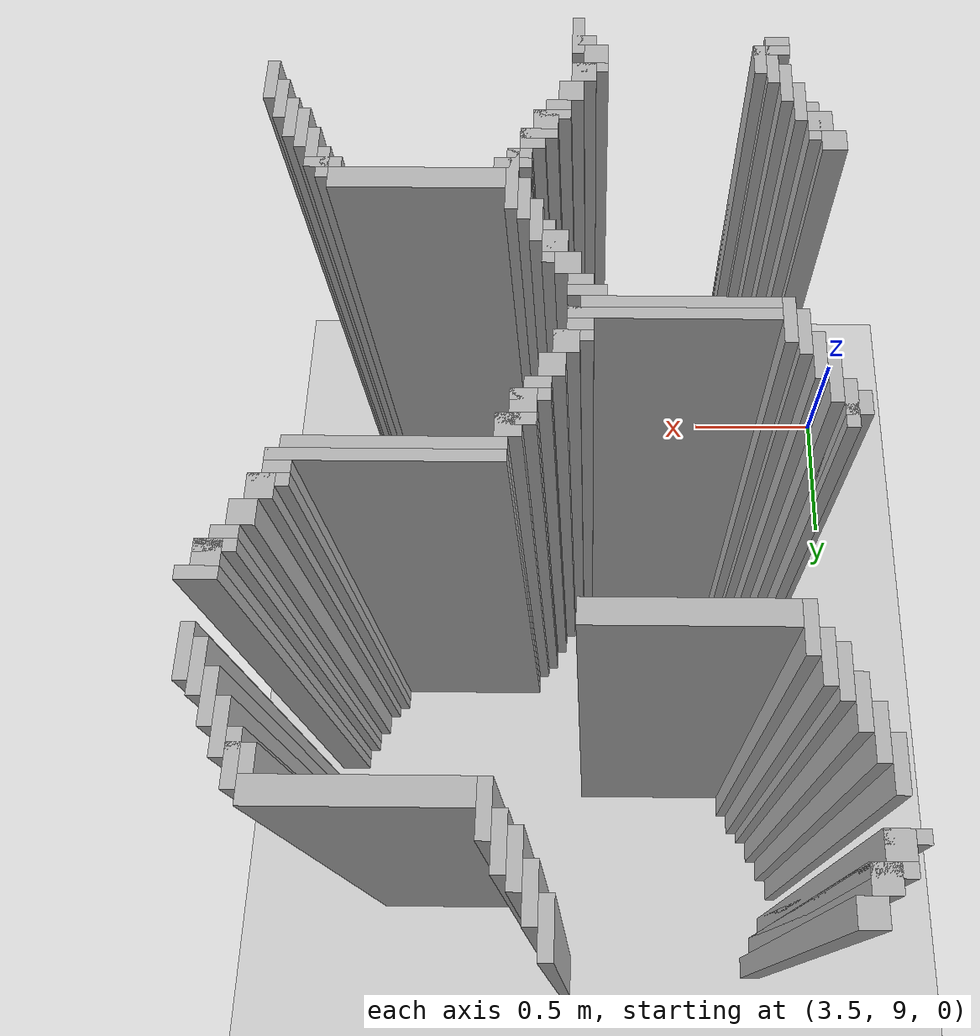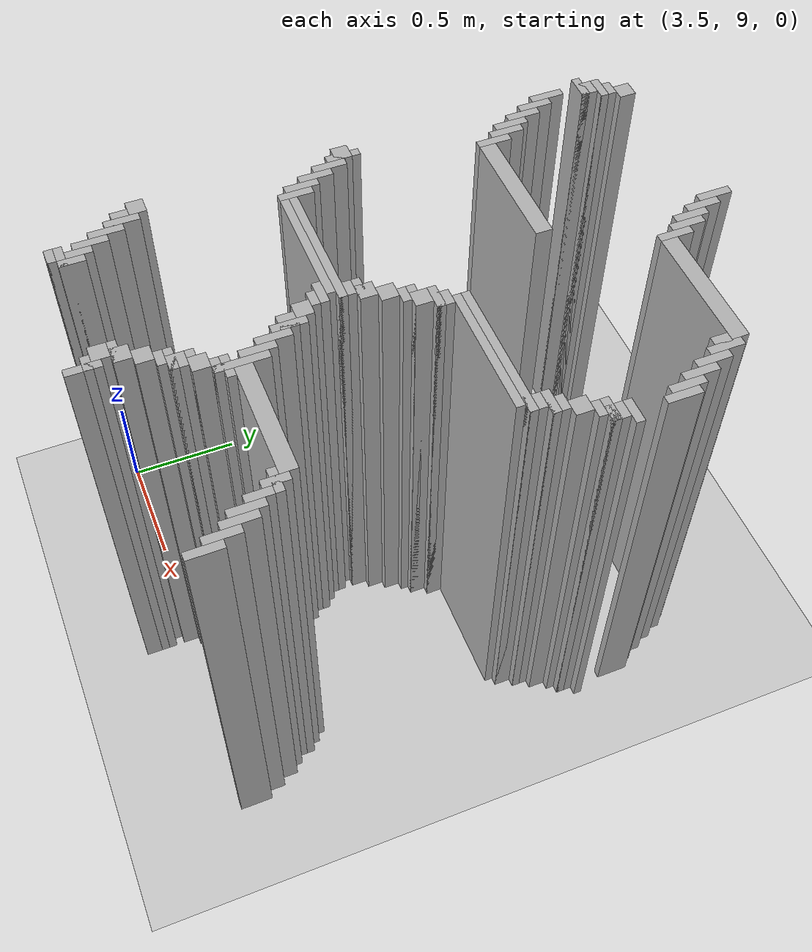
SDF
<sdf version="1.6">
 <world name="slam_world">
  <model name="ground_plane">
   <static>true</static>
   <link name="link">
    <collision name="collision">
     <geometry><plane><normal>0 0 1</normal><size>100 100</size></plane></geometry>
    </collision>
    <visual name="visual">
     <geometry><plane><normal>0 0 1</normal><size>100 100</size></plane></geometry>
     <material>
      <ambient>0.8 0.8 0.8 1</ambient>
      <diffuse>0.8 0.8 0.8 1</diffuse>
      <specular>0.8 0.8 0.8 1</specular>
     </material>
    </visual>
   </link>
  </model>
  <model name="wall_2072">
   <static>true</static>
   <pose>4.541763341067285 11.310904872389791 1.0 0 0 0</pose>
   <link name="link">
    <collision name="collision">
     <geometry><box><size>0.03480278422273782 0.13921113689095127 2.0</size></box></geometry>
    </collision>
    <visual name="visual">
     <geometry><box><size>0.03480278422273782 0.13921113689095127 2.0</size></box></geometry>
     <material><ambient>0.5 0.5 0.5 1</ambient><diffuse>0.7 0.7 0.7 1</diffuse></material>
    </visual>
   </link>
  </model>
  <model name="wall_2096">
   <static>true</static>
   <pose>3.863109048723898 11.276102088167052 1.0 0 0 0</pose>
   <link name="link">
    <collision name="collision">
     <geometry><box><size>0.06960556844547564 0.06960556844547564 2.0</size></box></geometry>
    </collision>
    <visual name="visual">
     <geometry><box><size>0.06960556844547564 0.06960556844547564 2.0</size></box></geometry>
     <material><ambient>0.5 0.5 0.5 1</ambient><diffuse>0.7 0.7 0.7 1</diffuse></material>
    </visual>
   </link>
  </model>
  <model name="wall_2097">
   <static>true</static>
   <pose>4.576566125290023 11.241299303944315 1.0 0 0 0</pose>
   <link name="link">
    <collision name="collision">
     <geometry><box><size>0.03480278422273782 0.13921113689095127 2.0</size></box></geometry>
    </collision>
    <visual name="visual">
     <geometry><box><size>0.03480278422273782 0.13921113689095127 2.0</size></box></geometry>
     <material><ambient>0.5 0.5 0.5 1</ambient><diffuse>0.7 0.7 0.7 1</diffuse></material>
    </visual>
   </link>
  </model>
  <model name="wall_2113">
   <static>true</static>
   <pose>3.82830626450116 11.206496519721577 1.0 0 0 0</pose>
   <link name="link">
    <collision name="collision">
     <geometry><box><size>0.06960556844547564 0.06960556844547564 2.0</size></box></geometry>
    </collision>
    <visual name="visual">
     <geometry><box><size>0.06960556844547564 0.06960556844547564 2.0</size></box></geometry>
     <material><ambient>0.5 0.5 0.5 1</ambient><diffuse>0.7 0.7 0.7 1</diffuse></material>
    </visual>
   </link>
  </model>
  <model name="wall_2114">
   <static>true</static>
   <pose>4.611368909512761 11.17169373549884 1.0 0 0 0</pose>
   <link name="link">
    <collision name="collision">
     <geometry><box><size>0.03480278422273782 0.13921113689095127 2.0</size></box></geometry>
    </collision>
    <visual name="visual">
     <geometry><box><size>0.03480278422273782 0.13921113689095127 2.0</size></box></geometry>
     <material><ambient>0.5 0.5 0.5 1</ambient><diffuse>0.7 0.7 0.7 1</diffuse></material>
    </visual>
   </link>
  </model>
  <model name="wall_2130">
   <static>true</static>
   <pose>3.810904872389791 11.189095127610209 1.0 0 0 0</pose>
   <link name="link">
    <collision name="collision">
     <geometry><box><size>0.10440835266821345 0.03480278422273782 2.0</size></box></geometry>
    </collision>
    <visual name="visual">
     <geometry><box><size>0.10440835266821345 0.03480278422273782 2.0</size></box></geometry>
     <material><ambient>0.5 0.5 0.5 1</ambient><diffuse>0.7 0.7 0.7 1</diffuse></material>
    </visual>
   </link>
  </model>
  <model name="wall_2131">
   <static>true</static>
   <pose>4.646171693735498 11.1368909512761 1.0 0 0 0</pose>
   <link name="link">
    <collision name="collision">
     <geometry><box><size>0.03480278422273782 0.13921113689095127 2.0</size></box></geometry>
    </collision>
    <visual name="visual">
     <geometry><box><size>0.03480278422273782 0.13921113689095127 2.0</size></box></geometry>
     <material><ambient>0.5 0.5 0.5 1</ambient><diffuse>0.7 0.7 0.7 1</diffuse></material>
    </visual>
   </link>
  </model>
  <model name="wall_2144">
   <static>true</static>
   <pose>3.793503480278422 11.1368909512761 1.0 0 0 0</pose>
   <link name="link">
    <collision name="collision">
     <geometry><box><size>0.06960556844547564 0.06960556844547564 2.0</size></box></geometry>
    </collision>
    <visual name="visual">
     <geometry><box><size>0.06960556844547564 0.06960556844547564 2.0</size></box></geometry>
     <material><ambient>0.5 0.5 0.5 1</ambient><diffuse>0.7 0.7 0.7 1</diffuse></material>
    </visual>
   </link>
  </model>
  <model name="wall_2154">
   <static>true</static>
   <pose>3.776102088167053 11.119489559164732 1.0 0 0 0</pose>
   <link name="link">
    <collision name="collision">
     <geometry><box><size>0.10440835266821345 0.03480278422273782 2.0</size></box></geometry>
    </collision>
    <visual name="visual">
     <geometry><box><size>0.10440835266821345 0.03480278422273782 2.0</size></box></geometry>
     <material><ambient>0.5 0.5 0.5 1</ambient><diffuse>0.7 0.7 0.7 1</diffuse></material>
    </visual>
   </link>
  </model>
  <model name="wall_2155">
   <static>true</static>
   <pose>4.6809744779582365 11.067285382830626 1.0 0 0 0</pose>
   <link name="link">
    <collision name="collision">
     <geometry><box><size>0.03480278422273782 0.13921113689095127 2.0</size></box></geometry>
    </collision>
    <visual name="visual">
     <geometry><box><size>0.03480278422273782 0.13921113689095127 2.0</size></box></geometry>
     <material><ambient>0.5 0.5 0.5 1</ambient><diffuse>0.7 0.7 0.7 1</diffuse></material>
    </visual>
   </link>
  </model>
  <model name="wall_2177">
   <static>true</static>
   <pose>4.959396751740139 11.032482598607888 1.0 0 0 0</pose>
   <link name="link">
    <collision name="collision">
     <geometry><box><size>0.5220417633410672 0.06960556844547564 2.0</size></box></geometry>
    </collision>
    <visual name="visual">
     <geometry><box><size>0.5220417633410672 0.06960556844547564 2.0</size></box></geometry>
     <material><ambient>0.5 0.5 0.5 1</ambient><diffuse>0.7 0.7 0.7 1</diffuse></material>
    </visual>
   </link>
  </model>
  <model name="wall_2188">
   <static>true</static>
   <pose>3.776102088167053 10.962877030162412 1.0 0 0 0</pose>
   <link name="link">
    <collision name="collision">
     <geometry><box><size>0.03480278422273782 0.13921113689095127 2.0</size></box></geometry>
    </collision>
    <visual name="visual">
     <geometry><box><size>0.03480278422273782 0.13921113689095127 2.0</size></box></geometry>
     <material><ambient>0.5 0.5 0.5 1</ambient><diffuse>0.7 0.7 0.7 1</diffuse></material>
    </visual>
   </link>
  </model>
  <model name="wall_2189">
   <static>true</static>
   <pose>5.237819025522041 10.962877030162412 1.0 0 0 0</pose>
   <link name="link">
    <collision name="collision">
     <geometry><box><size>0.03480278422273782 0.13921113689095127 2.0</size></box></geometry>
    </collision>
    <visual name="visual">
     <geometry><box><size>0.03480278422273782 0.13921113689095127 2.0</size></box></geometry>
     <material><ambient>0.5 0.5 0.5 1</ambient><diffuse>0.7 0.7 0.7 1</diffuse></material>
    </visual>
   </link>
  </model>
  <model name="wall_2201">
   <static>true</static>
   <pose>5.220417633410673 10.962877030162412 1.0 0 0 0</pose>
   <link name="link">
    <collision name="collision">
     <geometry><box><size>0.06960556844547564 0.06960556844547564 2.0</size></box></geometry>
    </collision>
    <visual name="visual">
     <geometry><box><size>0.06960556844547564 0.06960556844547564 2.0</size></box></geometry>
     <material><ambient>0.5 0.5 0.5 1</ambient><diffuse>0.7 0.7 0.7 1</diffuse></material>
    </visual>
   </link>
  </model>
  <model name="wall_2212">
   <static>true</static>
   <pose>3.810904872389791 10.893271461716937 1.0 0 0 0</pose>
   <link name="link">
    <collision name="collision">
     <geometry><box><size>0.03480278422273782 0.13921113689095127 2.0</size></box></geometry>
    </collision>
    <visual name="visual">
     <geometry><box><size>0.03480278422273782 0.13921113689095127 2.0</size></box></geometry>
     <material><ambient>0.5 0.5 0.5 1</ambient><diffuse>0.7 0.7 0.7 1</diffuse></material>
    </visual>
   </link>
  </model>
  <model name="wall_2213">
   <static>true</static>
   <pose>5.27262180974478 10.893271461716937 1.0 0 0 0</pose>
   <link name="link">
    <collision name="collision">
     <geometry><box><size>0.03480278422273782 0.13921113689095127 2.0</size></box></geometry>
    </collision>
    <visual name="visual">
     <geometry><box><size>0.03480278422273782 0.13921113689095127 2.0</size></box></geometry>
     <material><ambient>0.5 0.5 0.5 1</ambient><diffuse>0.7 0.7 0.7 1</diffuse></material>
    </visual>
   </link>
  </model>
  <model name="wall_2231">
   <static>true</static>
   <pose>3.845707656612529 10.82366589327146 1.0 0 0 0</pose>
   <link name="link">
    <collision name="collision">
     <geometry><box><size>0.03480278422273782 0.13921113689095127 2.0</size></box></geometry>
    </collision>
    <visual name="visual">
     <geometry><box><size>0.03480278422273782 0.13921113689095127 2.0</size></box></geometry>
     <material><ambient>0.5 0.5 0.5 1</ambient><diffuse>0.7 0.7 0.7 1</diffuse></material>
    </visual>
   </link>
  </model>
  <model name="wall_2232">
   <static>true</static>
   <pose>5.307424593967517 10.82366589327146 1.0 0 0 0</pose>
   <link name="link">
    <collision name="collision">
     <geometry><box><size>0.03480278422273782 0.13921113689095127 2.0</size></box></geometry>
    </collision>
    <visual name="visual">
     <geometry><box><size>0.03480278422273782 0.13921113689095127 2.0</size></box></geometry>
     <material><ambient>0.5 0.5 0.5 1</ambient><diffuse>0.7 0.7 0.7 1</diffuse></material>
    </visual>
   </link>
  </model>
  <model name="wall_2243">
   <static>true</static>
   <pose>3.8805104408352666 10.754060324825986 1.0 0 0 0</pose>
   <link name="link">
    <collision name="collision">
     <geometry><box><size>0.03480278422273782 0.13921113689095127 2.0</size></box></geometry>
    </collision>
    <visual name="visual">
     <geometry><box><size>0.03480278422273782 0.13921113689095127 2.0</size></box></geometry>
     <material><ambient>0.5 0.5 0.5 1</ambient><diffuse>0.7 0.7 0.7 1</diffuse></material>
    </visual>
   </link>
  </model>
  <model name="wall_2244">
   <static>true</static>
   <pose>5.342227378190255 10.754060324825986 1.0 0 0 0</pose>
   <link name="link">
    <collision name="collision">
     <geometry><box><size>0.03480278422273782 0.13921113689095127 2.0</size></box></geometry>
    </collision>
    <visual name="visual">
     <geometry><box><size>0.03480278422273782 0.13921113689095127 2.0</size></box></geometry>
     <material><ambient>0.5 0.5 0.5 1</ambient><diffuse>0.7 0.7 0.7 1</diffuse></material>
    </visual>
   </link>
  </model>
  <model name="wall_2255">
   <static>true</static>
   <pose>3.9153132250580045 10.719257540603248 1.0 0 0 0</pose>
   <link name="link">
    <collision name="collision">
     <geometry><box><size>0.03480278422273782 0.13921113689095127 2.0</size></box></geometry>
    </collision>
    <visual name="visual">
     <geometry><box><size>0.03480278422273782 0.13921113689095127 2.0</size></box></geometry>
     <material><ambient>0.5 0.5 0.5 1</ambient><diffuse>0.7 0.7 0.7 1</diffuse></material>
    </visual>
   </link>
  </model>
  <model name="wall_2256">
   <static>true</static>
   <pose>5.377030162412993 10.719257540603248 1.0 0 0 0</pose>
   <link name="link">
    <collision name="collision">
     <geometry><box><size>0.03480278422273782 0.13921113689095127 2.0</size></box></geometry>
    </collision>
    <visual name="visual">
     <geometry><box><size>0.03480278422273782 0.13921113689095127 2.0</size></box></geometry>
     <material><ambient>0.5 0.5 0.5 1</ambient><diffuse>0.7 0.7 0.7 1</diffuse></material>
    </visual>
   </link>
  </model>
  <model name="wall_2273">
   <static>true</static>
   <pose>3.9501160092807424 10.649651972157772 1.0 0 0 0</pose>
   <link name="link">
    <collision name="collision">
     <geometry><box><size>0.03480278422273782 0.13921113689095127 2.0</size></box></geometry>
    </collision>
    <visual name="visual">
     <geometry><box><size>0.03480278422273782 0.13921113689095127 2.0</size></box></geometry>
     <material><ambient>0.5 0.5 0.5 1</ambient><diffuse>0.7 0.7 0.7 1</diffuse></material>
    </visual>
   </link>
  </model>
  <model name="wall_2292">
   <static>true</static>
   <pose>4.228538283062645 10.614849187935034 1.0 0 0 0</pose>
   <link name="link">
    <collision name="collision">
     <geometry><box><size>0.5220417633410672 0.06960556844547564 2.0</size></box></geometry>
    </collision>
    <visual name="visual">
     <geometry><box><size>0.5220417633410672 0.06960556844547564 2.0</size></box></geometry>
     <material><ambient>0.5 0.5 0.5 1</ambient><diffuse>0.7 0.7 0.7 1</diffuse></material>
    </visual>
   </link>
  </model>
  <model name="wall_2315">
   <static>true</static>
   <pose>5.377030162412993 10.52784222737819 1.0 0 0 0</pose>
   <link name="link">
    <collision name="collision">
     <geometry><box><size>0.10440835266821345 0.03480278422273782 2.0</size></box></geometry>
    </collision>
    <visual name="visual">
     <geometry><box><size>0.10440835266821345 0.03480278422273782 2.0</size></box></geometry>
     <material><ambient>0.5 0.5 0.5 1</ambient><diffuse>0.7 0.7 0.7 1</diffuse></material>
    </visual>
   </link>
  </model>
  <model name="wall_2326">
   <static>true</static>
   <pose>5.359628770301624 10.475638051044083 1.0 0 0 0</pose>
   <link name="link">
    <collision name="collision">
     <geometry><box><size>0.06960556844547564 0.06960556844547564 2.0</size></box></geometry>
    </collision>
    <visual name="visual">
     <geometry><box><size>0.06960556844547564 0.06960556844547564 2.0</size></box></geometry>
     <material><ambient>0.5 0.5 0.5 1</ambient><diffuse>0.7 0.7 0.7 1</diffuse></material>
    </visual>
   </link>
  </model>
  <model name="wall_2337">
   <static>true</static>
   <pose>5.342227378190255 10.458236658932714 1.0 0 0 0</pose>
   <link name="link">
    <collision name="collision">
     <geometry><box><size>0.10440835266821345 0.03480278422273782 2.0</size></box></geometry>
    </collision>
    <visual name="visual">
     <geometry><box><size>0.10440835266821345 0.03480278422273782 2.0</size></box></geometry>
     <material><ambient>0.5 0.5 0.5 1</ambient><diffuse>0.7 0.7 0.7 1</diffuse></material>
    </visual>
   </link>
  </model>
  <model name="wall_2345">
   <static>true</static>
   <pose>5.324825986078886 10.423433874709977 1.0 0 0 0</pose>
   <link name="link">
    <collision name="collision">
     <geometry><box><size>0.06960556844547564 0.03480278422273782 2.0</size></box></geometry>
    </collision>
    <visual name="visual">
     <geometry><box><size>0.06960556844547564 0.03480278422273782 2.0</size></box></geometry>
     <material><ambient>0.5 0.5 0.5 1</ambient><diffuse>0.7 0.7 0.7 1</diffuse></material>
    </visual>
   </link>
  </model>
  <model name="wall_2353">
   <static>true</static>
   <pose>5.290023201856148 10.37122969837587 1.0 0 0 0</pose>
   <link name="link">
    <collision name="collision">
     <geometry><box><size>0.06960556844547564 0.06960556844547564 2.0</size></box></geometry>
    </collision>
    <visual name="visual">
     <geometry><box><size>0.06960556844547564 0.06960556844547564 2.0</size></box></geometry>
     <material><ambient>0.5 0.5 0.5 1</ambient><diffuse>0.7 0.7 0.7 1</diffuse></material>
    </visual>
   </link>
  </model>
  <model name="wall_2364">
   <static>true</static>
   <pose>5.25522041763341 10.301624129930394 1.0 0 0 0</pose>
   <link name="link">
    <collision name="collision">
     <geometry><box><size>0.06960556844547564 0.06960556844547564 2.0</size></box></geometry>
    </collision>
    <visual name="visual">
     <geometry><box><size>0.06960556844547564 0.06960556844547564 2.0</size></box></geometry>
     <material><ambient>0.5 0.5 0.5 1</ambient><diffuse>0.7 0.7 0.7 1</diffuse></material>
    </visual>
   </link>
  </model>
  <model name="wall_2375">
   <static>true</static>
   <pose>5.237819025522041 10.284222737819025 1.0 0 0 0</pose>
   <link name="link">
    <collision name="collision">
     <geometry><box><size>0.10440835266821345 0.03480278422273782 2.0</size></box></geometry>
    </collision>
    <visual name="visual">
     <geometry><box><size>0.10440835266821345 0.03480278422273782 2.0</size></box></geometry>
     <material><ambient>0.5 0.5 0.5 1</ambient><diffuse>0.7 0.7 0.7 1</diffuse></material>
    </visual>
   </link>
  </model>
  <model name="wall_2383">
   <static>true</static>
   <pose>5.220417633410673 10.232018561484919 1.0 0 0 0</pose>
   <link name="link">
    <collision name="collision">
     <geometry><box><size>0.06960556844547564 0.06960556844547564 2.0</size></box></geometry>
    </collision>
    <visual name="visual">
     <geometry><box><size>0.06960556844547564 0.06960556844547564 2.0</size></box></geometry>
     <material><ambient>0.5 0.5 0.5 1</ambient><diffuse>0.7 0.7 0.7 1</diffuse></material>
    </visual>
   </link>
  </model>
  <model name="wall_2391">
   <static>true</static>
   <pose>4.959396751740139 10.214617169373549 1.0 0 0 0</pose>
   <link name="link">
    <collision name="collision">
     <geometry><box><size>0.5916473317865429 0.03480278422273782 2.0</size></box></geometry>
    </collision>
    <visual name="visual">
     <geometry><box><size>0.5916473317865429 0.03480278422273782 2.0</size></box></geometry>
     <material><ambient>0.5 0.5 0.5 1</ambient><diffuse>0.7 0.7 0.7 1</diffuse></material>
    </visual>
   </link>
  </model>
  <model name="wall_2400">
   <static>true</static>
   <pose>4.94199535962877 10.179814385150811 1.0 0 0 0</pose>
   <link name="link">
    <collision name="collision">
     <geometry><box><size>0.5568445475638051 0.03480278422273782 2.0</size></box></geometry>
    </collision>
    <visual name="visual">
     <geometry><box><size>0.5568445475638051 0.03480278422273782 2.0</size></box></geometry>
     <material><ambient>0.5 0.5 0.5 1</ambient><diffuse>0.7 0.7 0.7 1</diffuse></material>
    </visual>
   </link>
  </model>
  <model name="wall_2410">
   <static>true</static>
   <pose>4.663573085846868 10.127610208816705 1.0 0 0 0</pose>
   <link name="link">
    <collision name="collision">
     <geometry><box><size>0.06960556844547564 0.06960556844547564 2.0</size></box></geometry>
    </collision>
    <visual name="visual">
     <geometry><box><size>0.06960556844547564 0.06960556844547564 2.0</size></box></geometry>
     <material><ambient>0.5 0.5 0.5 1</ambient><diffuse>0.7 0.7 0.7 1</diffuse></material>
    </visual>
   </link>
  </model>
  <model name="wall_2423">
   <static>true</static>
   <pose>3.810904872389791 10.058004640371228 1.0 0 0 0</pose>
   <link name="link">
    <collision name="collision">
     <geometry><box><size>0.03480278422273782 0.13921113689095127 2.0</size></box></geometry>
    </collision>
    <visual name="visual">
     <geometry><box><size>0.03480278422273782 0.13921113689095127 2.0</size></box></geometry>
     <material><ambient>0.5 0.5 0.5 1</ambient><diffuse>0.7 0.7 0.7 1</diffuse></material>
    </visual>
   </link>
  </model>
  <model name="wall_2424">
   <static>true</static>
   <pose>4.646171693735498 10.110208816705336 1.0 0 0 0</pose>
   <link name="link">
    <collision name="collision">
     <geometry><box><size>0.10440835266821345 0.03480278422273782 2.0</size></box></geometry>
    </collision>
    <visual name="visual">
     <geometry><box><size>0.10440835266821345 0.03480278422273782 2.0</size></box></geometry>
     <material><ambient>0.5 0.5 0.5 1</ambient><diffuse>0.7 0.7 0.7 1</diffuse></material>
    </visual>
   </link>
  </model>
  <model name="wall_2437">
   <static>true</static>
   <pose>3.793503480278422 10.058004640371228 1.0 0 0 0</pose>
   <link name="link">
    <collision name="collision">
     <geometry><box><size>0.06960556844547564 0.06960556844547564 2.0</size></box></geometry>
    </collision>
    <visual name="visual">
     <geometry><box><size>0.06960556844547564 0.06960556844547564 2.0</size></box></geometry>
     <material><ambient>0.5 0.5 0.5 1</ambient><diffuse>0.7 0.7 0.7 1</diffuse></material>
    </visual>
   </link>
  </model>
  <model name="wall_2438">
   <static>true</static>
   <pose>4.6287703016241295 10.058004640371228 1.0 0 0 0</pose>
   <link name="link">
    <collision name="collision">
     <geometry><box><size>0.06960556844547564 0.06960556844547564 2.0</size></box></geometry>
    </collision>
    <visual name="visual">
     <geometry><box><size>0.06960556844547564 0.06960556844547564 2.0</size></box></geometry>
     <material><ambient>0.5 0.5 0.5 1</ambient><diffuse>0.7 0.7 0.7 1</diffuse></material>
    </visual>
   </link>
  </model>
  <model name="wall_2451">
   <static>true</static>
   <pose>3.845707656612529 9.988399071925754 1.0 0 0 0</pose>
   <link name="link">
    <collision name="collision">
     <geometry><box><size>0.03480278422273782 0.13921113689095127 2.0</size></box></geometry>
    </collision>
    <visual name="visual">
     <geometry><box><size>0.03480278422273782 0.13921113689095127 2.0</size></box></geometry>
     <material><ambient>0.5 0.5 0.5 1</ambient><diffuse>0.7 0.7 0.7 1</diffuse></material>
    </visual>
   </link>
  </model>
  <model name="wall_2452">
   <static>true</static>
   <pose>4.611368909512761 10.04060324825986 1.0 0 0 0</pose>
   <link name="link">
    <collision name="collision">
     <geometry><box><size>0.10440835266821345 0.03480278422273782 2.0</size></box></geometry>
    </collision>
    <visual name="visual">
     <geometry><box><size>0.10440835266821345 0.03480278422273782 2.0</size></box></geometry>
     <material><ambient>0.5 0.5 0.5 1</ambient><diffuse>0.7 0.7 0.7 1</diffuse></material>
    </visual>
   </link>
  </model>
  <model name="wall_2464">
   <static>true</static>
   <pose>4.593967517401392 10.005800464037122 1.0 0 0 0</pose>
   <link name="link">
    <collision name="collision">
     <geometry><box><size>0.06960556844547564 0.03480278422273782 2.0</size></box></geometry>
    </collision>
    <visual name="visual">
     <geometry><box><size>0.06960556844547564 0.03480278422273782 2.0</size></box></geometry>
     <material><ambient>0.5 0.5 0.5 1</ambient><diffuse>0.7 0.7 0.7 1</diffuse></material>
    </visual>
   </link>
  </model>
  <model name="wall_2473">
   <static>true</static>
   <pose>3.8805104408352666 9.918793503480279 1.0 0 0 0</pose>
   <link name="link">
    <collision name="collision">
     <geometry><box><size>0.03480278422273782 0.13921113689095127 2.0</size></box></geometry>
    </collision>
    <visual name="visual">
     <geometry><box><size>0.03480278422273782 0.13921113689095127 2.0</size></box></geometry>
     <material><ambient>0.5 0.5 0.5 1</ambient><diffuse>0.7 0.7 0.7 1</diffuse></material>
    </visual>
   </link>
  </model>
  <model name="wall_2474">
   <static>true</static>
   <pose>4.559164733178654 9.953596287703016 1.0 0 0 0</pose>
   <link name="link">
    <collision name="collision">
     <geometry><box><size>0.06960556844547564 0.06960556844547564 2.0</size></box></geometry>
    </collision>
    <visual name="visual">
     <geometry><box><size>0.06960556844547564 0.06960556844547564 2.0</size></box></geometry>
     <material><ambient>0.5 0.5 0.5 1</ambient><diffuse>0.7 0.7 0.7 1</diffuse></material>
    </visual>
   </link>
  </model>
  <model name="wall_2487">
   <static>true</static>
   <pose>3.9153132250580045 9.849187935034802 1.0 0 0 0</pose>
   <link name="link">
    <collision name="collision">
     <geometry><box><size>0.03480278422273782 0.13921113689095127 2.0</size></box></geometry>
    </collision>
    <visual name="visual">
     <geometry><box><size>0.03480278422273782 0.13921113689095127 2.0</size></box></geometry>
     <material><ambient>0.5 0.5 0.5 1</ambient><diffuse>0.7 0.7 0.7 1</diffuse></material>
    </visual>
   </link>
  </model>
  <model name="wall_2488">
   <static>true</static>
   <pose>4.524361948955916 9.88399071925754 1.0 0 0 0</pose>
   <link name="link">
    <collision name="collision">
     <geometry><box><size>0.06960556844547564 0.06960556844547564 2.0</size></box></geometry>
    </collision>
    <visual name="visual">
     <geometry><box><size>0.06960556844547564 0.06960556844547564 2.0</size></box></geometry>
     <material><ambient>0.5 0.5 0.5 1</ambient><diffuse>0.7 0.7 0.7 1</diffuse></material>
    </visual>
   </link>
  </model>
  <model name="wall_2501">
   <static>true</static>
   <pose>3.9501160092807424 9.814385150812065 1.0 0 0 0</pose>
   <link name="link">
    <collision name="collision">
     <geometry><box><size>0.03480278422273782 0.13921113689095127 2.0</size></box></geometry>
    </collision>
    <visual name="visual">
     <geometry><box><size>0.03480278422273782 0.13921113689095127 2.0</size></box></geometry>
     <material><ambient>0.5 0.5 0.5 1</ambient><diffuse>0.7 0.7 0.7 1</diffuse></material>
    </visual>
   </link>
  </model>
  <model name="wall_2502">
   <static>true</static>
   <pose>4.506960556844548 9.86658932714617 1.0 0 0 0</pose>
   <link name="link">
    <collision name="collision">
     <geometry><box><size>0.10440835266821345 0.03480278422273782 2.0</size></box></geometry>
    </collision>
    <visual name="visual">
     <geometry><box><size>0.10440835266821345 0.03480278422273782 2.0</size></box></geometry>
     <material><ambient>0.5 0.5 0.5 1</ambient><diffuse>0.7 0.7 0.7 1</diffuse></material>
    </visual>
   </link>
  </model>
  <model name="wall_2514">
   <static>true</static>
   <pose>4.489559164733178 9.814385150812065 1.0 0 0 0</pose>
   <link name="link">
    <collision name="collision">
     <geometry><box><size>0.06960556844547564 0.06960556844547564 2.0</size></box></geometry>
    </collision>
    <visual name="visual">
     <geometry><box><size>0.06960556844547564 0.06960556844547564 2.0</size></box></geometry>
     <material><ambient>0.5 0.5 0.5 1</ambient><diffuse>0.7 0.7 0.7 1</diffuse></material>
    </visual>
   </link>
  </model>
  <model name="wall_2523">
   <static>true</static>
   <pose>4.2459396751740135 9.796983758700696 1.0 0 0 0</pose>
   <link name="link">
    <collision name="collision">
     <geometry><box><size>0.5568445475638051 0.03480278422273782 2.0</size></box></geometry>
    </collision>
    <visual name="visual">
     <geometry><box><size>0.5568445475638051 0.03480278422273782 2.0</size></box></geometry>
     <material><ambient>0.5 0.5 0.5 1</ambient><diffuse>0.7 0.7 0.7 1</diffuse></material>
    </visual>
   </link>
  </model>
  <model name="wall_2536">
   <static>true</static>
   <pose>4.228538283062645 9.762180974477959 1.0 0 0 0</pose>
   <link name="link">
    <collision name="collision">
     <geometry><box><size>0.5220417633410672 0.03480278422273782 2.0</size></box></geometry>
    </collision>
    <visual name="visual">
     <geometry><box><size>0.5220417633410672 0.03480278422273782 2.0</size></box></geometry>
     <material><ambient>0.5 0.5 0.5 1</ambient><diffuse>0.7 0.7 0.7 1</diffuse></material>
    </visual>
   </link>
  </model>
  <model name="wall_2543">
   <static>true</static>
   <pose>4.472157772621809 9.72737819025522 1.0 0 0 0</pose>
   <link name="link">
    <collision name="collision">
     <geometry><box><size>0.10440835266821345 0.03480278422273782 2.0</size></box></geometry>
    </collision>
    <visual name="visual">
     <geometry><box><size>0.10440835266821345 0.03480278422273782 2.0</size></box></geometry>
     <material><ambient>0.5 0.5 0.5 1</ambient><diffuse>0.7 0.7 0.7 1</diffuse></material>
    </visual>
   </link>
  </model>
  <model name="wall_2552">
   <static>true</static>
   <pose>4.489559164733178 9.692575406032482 1.0 0 0 0</pose>
   <link name="link">
    <collision name="collision">
     <geometry><box><size>0.06960556844547564 0.03480278422273782 2.0</size></box></geometry>
    </collision>
    <visual name="visual">
     <geometry><box><size>0.06960556844547564 0.03480278422273782 2.0</size></box></geometry>
     <material><ambient>0.5 0.5 0.5 1</ambient><diffuse>0.7 0.7 0.7 1</diffuse></material>
    </visual>
   </link>
  </model>
  <model name="wall_2560">
   <static>true</static>
   <pose>4.524361948955916 9.640371229698376 1.0 0 0 0</pose>
   <link name="link">
    <collision name="collision">
     <geometry><box><size>0.06960556844547564 0.06960556844547564 2.0</size></box></geometry>
    </collision>
    <visual name="visual">
     <geometry><box><size>0.06960556844547564 0.06960556844547564 2.0</size></box></geometry>
     <material><ambient>0.5 0.5 0.5 1</ambient><diffuse>0.7 0.7 0.7 1</diffuse></material>
    </visual>
   </link>
  </model>
  <model name="wall_2571">
   <static>true</static>
   <pose>4.576566125290023 9.5707656612529 1.0 0 0 0</pose>
   <link name="link">
    <collision name="collision">
     <geometry><box><size>0.03480278422273782 0.13921113689095127 2.0</size></box></geometry>
    </collision>
    <visual name="visual">
     <geometry><box><size>0.03480278422273782 0.13921113689095127 2.0</size></box></geometry>
     <material><ambient>0.5 0.5 0.5 1</ambient><diffuse>0.7 0.7 0.7 1</diffuse></material>
    </visual>
   </link>
  </model>
  <model name="wall_2582">
   <static>true</static>
   <pose>4.559164733178654 9.5707656612529 1.0 0 0 0</pose>
   <link name="link">
    <collision name="collision">
     <geometry><box><size>0.06960556844547564 0.06960556844547564 2.0</size></box></geometry>
    </collision>
    <visual name="visual">
     <geometry><box><size>0.06960556844547564 0.06960556844547564 2.0</size></box></geometry>
     <material><ambient>0.5 0.5 0.5 1</ambient><diffuse>0.7 0.7 0.7 1</diffuse></material>
    </visual>
   </link>
  </model>
  <model name="wall_2593">
   <static>true</static>
   <pose>4.611368909512761 9.501160092807424 1.0 0 0 0</pose>
   <link name="link">
    <collision name="collision">
     <geometry><box><size>0.03480278422273782 0.13921113689095127 2.0</size></box></geometry>
    </collision>
    <visual name="visual">
     <geometry><box><size>0.03480278422273782 0.13921113689095127 2.0</size></box></geometry>
     <material><ambient>0.5 0.5 0.5 1</ambient><diffuse>0.7 0.7 0.7 1</diffuse></material>
    </visual>
   </link>
  </model>
  <model name="wall_2608">
   <static>true</static>
   <pose>4.646171693735498 9.431554524361948 1.0 0 0 0</pose>
   <link name="link">
    <collision name="collision">
     <geometry><box><size>0.03480278422273782 0.13921113689095127 2.0</size></box></geometry>
    </collision>
    <visual name="visual">
     <geometry><box><size>0.03480278422273782 0.13921113689095127 2.0</size></box></geometry>
     <material><ambient>0.5 0.5 0.5 1</ambient><diffuse>0.7 0.7 0.7 1</diffuse></material>
    </visual>
   </link>
  </model>
  <model name="wall_2619">
   <static>true</static>
   <pose>4.6809744779582365 9.361948955916473 1.0 0 0 0</pose>
   <link name="link">
    <collision name="collision">
     <geometry><box><size>0.03480278422273782 0.2088167053364269 2.0</size></box></geometry>
    </collision>
    <visual name="visual">
     <geometry><box><size>0.03480278422273782 0.2088167053364269 2.0</size></box></geometry>
     <material><ambient>0.5 0.5 0.5 1</ambient><diffuse>0.7 0.7 0.7 1</diffuse></material>
    </visual>
   </link>
  </model>
  <model name="wall_2635">
   <static>true</static>
   <pose>4.94199535962877 9.361948955916473 1.0 0 0 0</pose>
   <link name="link">
    <collision name="collision">
     <geometry><box><size>0.4872389791183295 0.06960556844547564 2.0</size></box></geometry>
    </collision>
    <visual name="visual">
     <geometry><box><size>0.4872389791183295 0.06960556844547564 2.0</size></box></geometry>
     <material><ambient>0.5 0.5 0.5 1</ambient><diffuse>0.7 0.7 0.7 1</diffuse></material>
    </visual>
   </link>
  </model>
  <model name="wall_2646">
   <static>true</static>
   <pose>5.203016241299304 9.309744779582367 1.0 0 0 0</pose>
   <link name="link">
    <collision name="collision">
     <geometry><box><size>0.03480278422273782 0.10440835266821345 2.0</size></box></geometry>
    </collision>
    <visual name="visual">
     <geometry><box><size>0.03480278422273782 0.10440835266821345 2.0</size></box></geometry>
     <material><ambient>0.5 0.5 0.5 1</ambient><diffuse>0.7 0.7 0.7 1</diffuse></material>
    </visual>
   </link>
  </model>
  <model name="wall_2658">
   <static>true</static>
   <pose>4.6809744779582365 9.309744779582367 1.0 0 0 0</pose>
   <link name="link">
    <collision name="collision">
     <geometry><box><size>0.10440835266821345 0.03480278422273782 2.0</size></box></geometry>
    </collision>
    <visual name="visual">
     <geometry><box><size>0.10440835266821345 0.03480278422273782 2.0</size></box></geometry>
     <material><ambient>0.5 0.5 0.5 1</ambient><diffuse>0.7 0.7 0.7 1</diffuse></material>
    </visual>
   </link>
  </model>
  <model name="wall_2659">
   <static>true</static>
   <pose>5.203016241299304 9.309744779582367 1.0 0 0 0</pose>
   <link name="link">
    <collision name="collision">
     <geometry><box><size>0.10440835266821345 0.03480278422273782 2.0</size></box></geometry>
    </collision>
    <visual name="visual">
     <geometry><box><size>0.10440835266821345 0.03480278422273782 2.0</size></box></geometry>
     <material><ambient>0.5 0.5 0.5 1</ambient><diffuse>0.7 0.7 0.7 1</diffuse></material>
    </visual>
   </link>
  </model>
  <model name="wall_2677">
   <static>true</static>
   <pose>4.663573085846868 9.274941995359628 1.0 0 0 0</pose>
   <link name="link">
    <collision name="collision">
     <geometry><box><size>0.06960556844547564 0.03480278422273782 2.0</size></box></geometry>
    </collision>
    <visual name="visual">
     <geometry><box><size>0.06960556844547564 0.03480278422273782 2.0</size></box></geometry>
     <material><ambient>0.5 0.5 0.5 1</ambient><diffuse>0.7 0.7 0.7 1</diffuse></material>
    </visual>
   </link>
  </model>
  <model name="wall_2678">
   <static>true</static>
   <pose>5.237819025522041 9.24013921113689 1.0 0 0 0</pose>
   <link name="link">
    <collision name="collision">
     <geometry><box><size>0.03480278422273782 0.10440835266821345 2.0</size></box></geometry>
    </collision>
    <visual name="visual">
     <geometry><box><size>0.03480278422273782 0.10440835266821345 2.0</size></box></geometry>
     <material><ambient>0.5 0.5 0.5 1</ambient><diffuse>0.7 0.7 0.7 1</diffuse></material>
    </visual>
   </link>
  </model>
  <model name="wall_2694">
   <static>true</static>
   <pose>3.793503480278422 9.222737819025522 1.0 0 0 0</pose>
   <link name="link">
    <collision name="collision">
     <geometry><box><size>0.06960556844547564 0.06960556844547564 2.0</size></box></geometry>
    </collision>
    <visual name="visual">
     <geometry><box><size>0.06960556844547564 0.06960556844547564 2.0</size></box></geometry>
     <material><ambient>0.5 0.5 0.5 1</ambient><diffuse>0.7 0.7 0.7 1</diffuse></material>
    </visual>
   </link>
  </model>
  <model name="wall_2695">
   <static>true</static>
   <pose>4.6287703016241295 9.222737819025522 1.0 0 0 0</pose>
   <link name="link">
    <collision name="collision">
     <geometry><box><size>0.06960556844547564 0.06960556844547564 2.0</size></box></geometry>
    </collision>
    <visual name="visual">
     <geometry><box><size>0.06960556844547564 0.06960556844547564 2.0</size></box></geometry>
     <material><ambient>0.5 0.5 0.5 1</ambient><diffuse>0.7 0.7 0.7 1</diffuse></material>
    </visual>
   </link>
  </model>
  <model name="wall_2696">
   <static>true</static>
   <pose>5.27262180974478 9.187935034802784 1.0 0 0 0</pose>
   <link name="link">
    <collision name="collision">
     <geometry><box><size>0.03480278422273782 0.13921113689095127 2.0</size></box></geometry>
    </collision>
    <visual name="visual">
     <geometry><box><size>0.03480278422273782 0.13921113689095127 2.0</size></box></geometry>
     <material><ambient>0.5 0.5 0.5 1</ambient><diffuse>0.7 0.7 0.7 1</diffuse></material>
    </visual>
   </link>
  </model>
  <model name="wall_2713">
   <static>true</static>
   <pose>3.845707656612529 9.153132250580047 1.0 0 0 0</pose>
   <link name="link">
    <collision name="collision">
     <geometry><box><size>0.03480278422273782 0.13921113689095127 2.0</size></box></geometry>
    </collision>
    <visual name="visual">
     <geometry><box><size>0.03480278422273782 0.13921113689095127 2.0</size></box></geometry>
     <material><ambient>0.5 0.5 0.5 1</ambient><diffuse>0.7 0.7 0.7 1</diffuse></material>
    </visual>
   </link>
  </model>
  <model name="wall_2714">
   <static>true</static>
   <pose>4.611368909512761 9.205336426914153 1.0 0 0 0</pose>
   <link name="link">
    <collision name="collision">
     <geometry><box><size>0.10440835266821345 0.03480278422273782 2.0</size></box></geometry>
    </collision>
    <visual name="visual">
     <geometry><box><size>0.10440835266821345 0.03480278422273782 2.0</size></box></geometry>
     <material><ambient>0.5 0.5 0.5 1</ambient><diffuse>0.7 0.7 0.7 1</diffuse></material>
    </visual>
   </link>
  </model>
  <model name="wall_2715">
   <static>true</static>
   <pose>5.307424593967517 9.153132250580047 1.0 0 0 0</pose>
   <link name="link">
    <collision name="collision">
     <geometry><box><size>0.03480278422273782 0.13921113689095127 2.0</size></box></geometry>
    </collision>
    <visual name="visual">
     <geometry><box><size>0.03480278422273782 0.13921113689095127 2.0</size></box></geometry>
     <material><ambient>0.5 0.5 0.5 1</ambient><diffuse>0.7 0.7 0.7 1</diffuse></material>
    </visual>
   </link>
  </model>
  <model name="wall_2730">
   <static>true</static>
   <pose>3.82830626450116 9.153132250580047 1.0 0 0 0</pose>
   <link name="link">
    <collision name="collision">
     <geometry><box><size>0.06960556844547564 0.06960556844547564 2.0</size></box></geometry>
    </collision>
    <visual name="visual">
     <geometry><box><size>0.06960556844547564 0.06960556844547564 2.0</size></box></geometry>
     <material><ambient>0.5 0.5 0.5 1</ambient><diffuse>0.7 0.7 0.7 1</diffuse></material>
    </visual>
   </link>
  </model>
  <model name="wall_2731">
   <static>true</static>
   <pose>4.593967517401392 9.153132250580047 1.0 0 0 0</pose>
   <link name="link">
    <collision name="collision">
     <geometry><box><size>0.06960556844547564 0.06960556844547564 2.0</size></box></geometry>
    </collision>
    <visual name="visual">
     <geometry><box><size>0.06960556844547564 0.06960556844547564 2.0</size></box></geometry>
     <material><ambient>0.5 0.5 0.5 1</ambient><diffuse>0.7 0.7 0.7 1</diffuse></material>
    </visual>
   </link>
  </model>
  <model name="wall_2747">
   <static>true</static>
   <pose>3.8805104408352666 9.08352668213457 1.0 0 0 0</pose>
   <link name="link">
    <collision name="collision">
     <geometry><box><size>0.03480278422273782 0.13921113689095127 2.0</size></box></geometry>
    </collision>
    <visual name="visual">
     <geometry><box><size>0.03480278422273782 0.13921113689095127 2.0</size></box></geometry>
     <material><ambient>0.5 0.5 0.5 1</ambient><diffuse>0.7 0.7 0.7 1</diffuse></material>
    </visual>
   </link>
  </model>
  <model name="wall_2748">
   <static>true</static>
   <pose>4.576566125290023 9.135730858468676 1.0 0 0 0</pose>
   <link name="link">
    <collision name="collision">
     <geometry><box><size>0.10440835266821345 0.03480278422273782 2.0</size></box></geometry>
    </collision>
    <visual name="visual">
     <geometry><box><size>0.10440835266821345 0.03480278422273782 2.0</size></box></geometry>
     <material><ambient>0.5 0.5 0.5 1</ambient><diffuse>0.7 0.7 0.7 1</diffuse></material>
    </visual>
   </link>
  </model>
  <model name="wall_2749">
   <static>true</static>
   <pose>5.342227378190255 9.08352668213457 1.0 0 0 0</pose>
   <link name="link">
    <collision name="collision">
     <geometry><box><size>0.03480278422273782 0.13921113689095127 2.0</size></box></geometry>
    </collision>
    <visual name="visual">
     <geometry><box><size>0.03480278422273782 0.13921113689095127 2.0</size></box></geometry>
     <material><ambient>0.5 0.5 0.5 1</ambient><diffuse>0.7 0.7 0.7 1</diffuse></material>
    </visual>
   </link>
  </model>
  <model name="wall_2764">
   <static>true</static>
   <pose>4.559164733178654 9.100928074245939 1.0 0 0 0</pose>
   <link name="link">
    <collision name="collision">
     <geometry><box><size>0.06960556844547564 0.03480278422273782 2.0</size></box></geometry>
    </collision>
    <visual name="visual">
     <geometry><box><size>0.06960556844547564 0.03480278422273782 2.0</size></box></geometry>
     <material><ambient>0.5 0.5 0.5 1</ambient><diffuse>0.7 0.7 0.7 1</diffuse></material>
    </visual>
   </link>
  </model>
  <model name="wall_2776">
   <static>true</static>
   <pose>3.9153132250580045 9.013921113689095 1.0 0 0 0</pose>
   <link name="link">
    <collision name="collision">
     <geometry><box><size>0.03480278422273782 0.13921113689095127 2.0</size></box></geometry>
    </collision>
    <visual name="visual">
     <geometry><box><size>0.03480278422273782 0.13921113689095127 2.0</size></box></geometry>
     <material><ambient>0.5 0.5 0.5 1</ambient><diffuse>0.7 0.7 0.7 1</diffuse></material>
    </visual>
   </link>
  </model>
  <model name="wall_2777">
   <static>true</static>
   <pose>4.524361948955916 9.048723897911833 1.0 0 0 0</pose>
   <link name="link">
    <collision name="collision">
     <geometry><box><size>0.06960556844547564 0.06960556844547564 2.0</size></box></geometry>
    </collision>
    <visual name="visual">
     <geometry><box><size>0.06960556844547564 0.06960556844547564 2.0</size></box></geometry>
     <material><ambient>0.5 0.5 0.5 1</ambient><diffuse>0.7 0.7 0.7 1</diffuse></material>
    </visual>
   </link>
  </model>
  <model name="wall_2778">
   <static>true</static>
   <pose>5.377030162412993 9.013921113689095 1.0 0 0 0</pose>
   <link name="link">
    <collision name="collision">
     <geometry><box><size>0.03480278422273782 0.13921113689095127 2.0</size></box></geometry>
    </collision>
    <visual name="visual">
     <geometry><box><size>0.03480278422273782 0.13921113689095127 2.0</size></box></geometry>
     <material><ambient>0.5 0.5 0.5 1</ambient><diffuse>0.7 0.7 0.7 1</diffuse></material>
    </visual>
   </link>
  </model>
  <model name="wall_2795">
   <static>true</static>
   <pose>3.9501160092807424 8.92691415313225 1.0 0 0 0</pose>
   <link name="link">
    <collision name="collision">
     <geometry><box><size>0.03480278422273782 0.17401392111368907 2.0</size></box></geometry>
    </collision>
    <visual name="visual">
     <geometry><box><size>0.03480278422273782 0.17401392111368907 2.0</size></box></geometry>
     <material><ambient>0.5 0.5 0.5 1</ambient><diffuse>0.7 0.7 0.7 1</diffuse></material>
    </visual>
   </link>
  </model>
  <model name="wall_2796">
   <static>true</static>
   <pose>4.489559164733178 8.979118329466356 1.0 0 0 0</pose>
   <link name="link">
    <collision name="collision">
     <geometry><box><size>0.06960556844547564 0.06960556844547564 2.0</size></box></geometry>
    </collision>
    <visual name="visual">
     <geometry><box><size>0.06960556844547564 0.06960556844547564 2.0</size></box></geometry>
     <material><ambient>0.5 0.5 0.5 1</ambient><diffuse>0.7 0.7 0.7 1</diffuse></material>
    </visual>
   </link>
  </model>
  <model name="wall_2813">
   <static>true</static>
   <pose>3.98491879350348 8.92691415313225 1.0 0 0 0</pose>
   <link name="link">
    <collision name="collision">
     <geometry><box><size>0.03480278422273782 0.10440835266821345 2.0</size></box></geometry>
    </collision>
    <visual name="visual">
     <geometry><box><size>0.03480278422273782 0.10440835266821345 2.0</size></box></geometry>
     <material><ambient>0.5 0.5 0.5 1</ambient><diffuse>0.7 0.7 0.7 1</diffuse></material>
    </visual>
   </link>
  </model>
  <model name="wall_2814">
   <static>true</static>
   <pose>4.472157772621809 8.961716937354987 1.0 0 0 0</pose>
   <link name="link">
    <collision name="collision">
     <geometry><box><size>0.10440835266821345 0.03480278422273782 2.0</size></box></geometry>
    </collision>
    <visual name="visual">
     <geometry><box><size>0.10440835266821345 0.03480278422273782 2.0</size></box></geometry>
     <material><ambient>0.5 0.5 0.5 1</ambient><diffuse>0.7 0.7 0.7 1</diffuse></material>
    </visual>
   </link>
  </model>
  <model name="wall_2829">
   <static>true</static>
   <pose>4.454756380510441 8.909512761020881 1.0 0 0 0</pose>
   <link name="link">
    <collision name="collision">
     <geometry><box><size>0.06960556844547564 0.06960556844547564 2.0</size></box></geometry>
    </collision>
    <visual name="visual">
     <geometry><box><size>0.06960556844547564 0.06960556844547564 2.0</size></box></geometry>
     <material><ambient>0.5 0.5 0.5 1</ambient><diffuse>0.7 0.7 0.7 1</diffuse></material>
    </visual>
   </link>
  </model>
  <model name="wall_2842">
   <static>true</static>
   <pose>3.9501160092807424 8.892111368909513 1.0 0 0 0</pose>
   <link name="link">
    <collision name="collision">
     <geometry><box><size>0.10440835266821345 0.03480278422273782 2.0</size></box></geometry>
    </collision>
    <visual name="visual">
     <geometry><box><size>0.10440835266821345 0.03480278422273782 2.0</size></box></geometry>
     <material><ambient>0.5 0.5 0.5 1</ambient><diffuse>0.7 0.7 0.7 1</diffuse></material>
    </visual>
   </link>
  </model>
  <model name="wall_2843">
   <static>true</static>
   <pose>4.506960556844548 8.839907192575406 1.0 0 0 0</pose>
   <link name="link">
    <collision name="collision">
     <geometry><box><size>0.03480278422273782 0.13921113689095127 2.0</size></box></geometry>
    </collision>
    <visual name="visual">
     <geometry><box><size>0.03480278422273782 0.13921113689095127 2.0</size></box></geometry>
     <material><ambient>0.5 0.5 0.5 1</ambient><diffuse>0.7 0.7 0.7 1</diffuse></material>
    </visual>
   </link>
  </model>
  <model name="wall_2857">
   <static>true</static>
   <pose>3.932714617169373 8.857308584686775 1.0 0 0 0</pose>
   <link name="link">
    <collision name="collision">
     <geometry><box><size>0.06960556844547564 0.03480278422273782 2.0</size></box></geometry>
    </collision>
    <visual name="visual">
     <geometry><box><size>0.06960556844547564 0.03480278422273782 2.0</size></box></geometry>
     <material><ambient>0.5 0.5 0.5 1</ambient><diffuse>0.7 0.7 0.7 1</diffuse></material>
    </visual>
   </link>
  </model>
  <model name="wall_2858">
   <static>true</static>
   <pose>4.489559164733178 8.857308584686775 1.0 0 0 0</pose>
   <link name="link">
    <collision name="collision">
     <geometry><box><size>0.06960556844547564 0.03480278422273782 2.0</size></box></geometry>
    </collision>
    <visual name="visual">
     <geometry><box><size>0.06960556844547564 0.03480278422273782 2.0</size></box></geometry>
     <material><ambient>0.5 0.5 0.5 1</ambient><diffuse>0.7 0.7 0.7 1</diffuse></material>
    </visual>
   </link>
  </model>
 </world>
</sdf>
